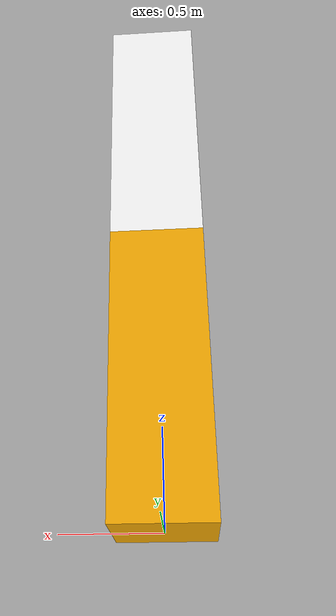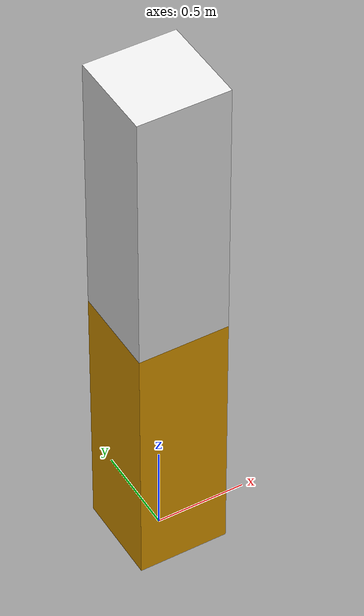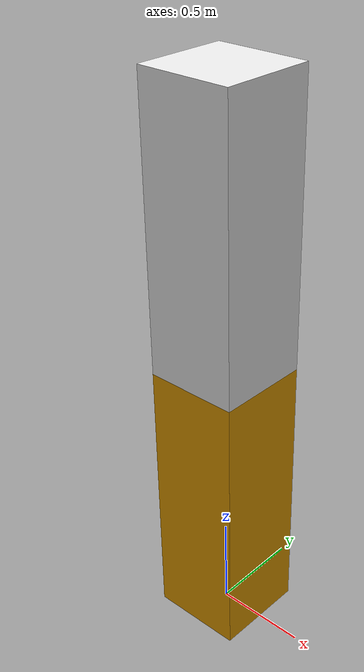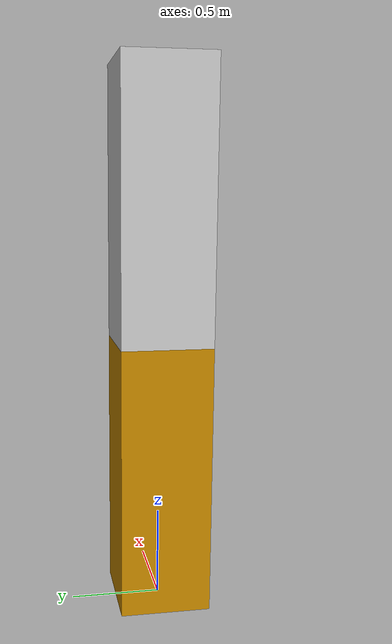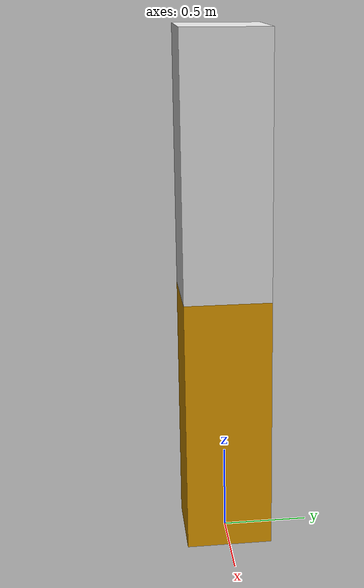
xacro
<?xml version="1.0"?>
<robot xmlns:xacro="http://ros.org/wiki/xacro" name="two_links_robot">
  <!-- base_link -->
  <xacro:include filename="$(find urdf_exercise)/urdf/base_link.urdf" />
  <!-- attachment -->
  <xacro:include filename="$(find urdf_exercise)/urdf/attachment.xacro" />
  <xacro:attachment connected_to="base_link"/>
</robot>

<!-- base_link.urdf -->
<robot name="myfirst">
  <link name="base_link">
    <visual>
      <origin rpy="0 0 0" xyz="0 0 0.75" />
      <geometry>
        <box size="0.5 0.5 1.5"/>
      </geometry>
    </visual>
  </link>
</robot>

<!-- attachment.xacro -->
<robot  xmlns:xacro="http://ros.org/wiki/xacro" name="link_one">
  <xacro:macro name="attachment" params="connected_to">
  <link name="link_one">
    <visual>
      <origin rpy="0 0 0" xyz="0 0 0.75" />
      <geometry>
        <box size="0.5 0.5 1.5"/>
      </geometry>
      <material name="white"/>
    </visual>
  </link>
  <joint name="connection_joint" type="revolute">
    <parent link="${connected_to}"/>
    <child link="link_one"/>
    <origin xyz="0.0 0.0 1.5" />
    <limit lower="-1.0" upper="1.0" effort="1000.0" velocity="0.5"/>
  </joint>
  </xacro:macro>
</robot>
